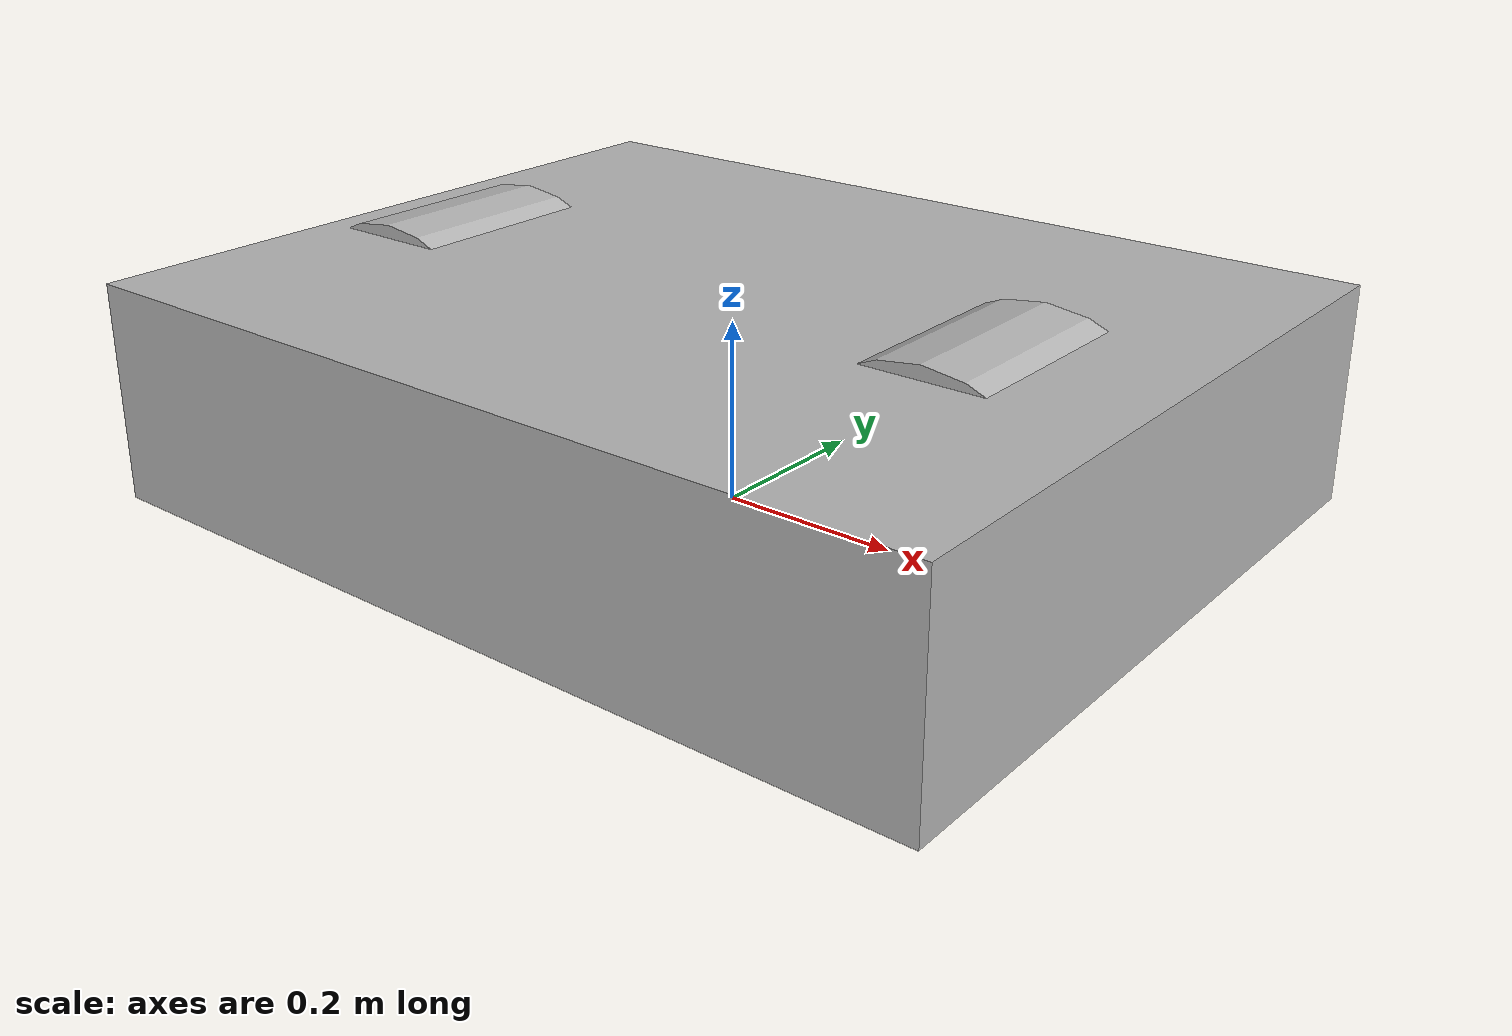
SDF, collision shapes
<?xml version="1.0" ?>
<sdf version="1.5">
  <model name="agv">

    <link name="base">

      <inertial>
        <pose>00.0 0.0 0.12 0 0 0</pose>
        <inertia>
          <ixx>0.001</ixx>
          <ixy>0.000</ixy>
          <ixz>0.000</ixz>
          <iyy>0.001</iyy>
          <iyz>0.000</iyz>
          <izz>0.001</izz>
        </inertia>
        <mass>100.0</mass>
      </inertial>

      <collision name="base_collision">
        <pose>0.0 0 0.120 0 0 0</pose>
        <geometry>
          <box>
            <size>1.0 0.8 0.240</size>
          </box>
        </geometry>
      </collision>

      <visual name="base_visual">
        <pose>0.0 0.0 0.12 0 0 0</pose>
        <geometry>
          <mesh>
            <uri>model://agv_common_meshes/agv.dae</uri>
            <scale>0.001 0.001 0.001</scale>
          </mesh>
        </geometry>
      </visual>
    </link>

    <link name="left_wheel">
      <inertial>
        <pose>-0.4 0.0 0.075 1.57 0 0</pose>
        <inertia>
          <ixx>0.001</ixx>
          <ixy>0.000</ixy>
          <ixz>0.000</ixz>
          <iyy>0.001</iyy>
          <iyz>0.000</iyz>
          <izz>0.001</izz>
        </inertia>
        <mass>15</mass>
      </inertial>

      <collision name="left_wheel_collision">
        <pose>-0.4 0.0 0.075 1.57 0 0</pose>
        <geometry>
          <cylinder>
            <radius>0.18</radius>
            <length>0.22</length>
          </cylinder>
        </geometry>
          <surface>
          <!-- This friction pamareter don't contain reliable data!! -->
            <friction>
              <ode>
                <mu>100000.0</mu>
                <mu2>100000.0</mu2>
                <fdir1>0 0 0</fdir1>
                <slip1>0.0</slip1>
                <slip2>0.0</slip2>
              </ode>
          </friction>
        </surface>
      </collision>

      <visual name="left_wheel_visual">
        <pose>-0.4 0.0 0.075 1.57 0 0</pose>
        <geometry>
          <mesh>
            <uri>model://agv_common_meshes/wheel.dae</uri>
            <scale>0.001 0.001 0.001</scale>
          </mesh>
        </geometry>
      </visual>
    </link>

    <link name="right_wheel">
      <inertial>
        <pose>0.3 0.0 0.075 -1.57 0 0</pose>
        <inertia>
          <ixx>0.001</ixx>
          <ixy>0.000</ixy>
          <ixz>0.000</ixz>
          <iyy>0.001</iyy>
          <iyz>0.000</iyz>
          <izz>0.001</izz>
        </inertia>
        <mass>1.5</mass>
      </inertial>

      <collision name="right_wheel_collision">
        <pose>0.3 0.0 0.075 -1.57 0 0</pose>
        <geometry>
          <cylinder>
            <radius>0.18</radius>
            <length>0.22</length>
          </cylinder>
        </geometry>
          <surface>
          <!-- This friction pamareter don't contain reliable data!! -->
            <friction>
              <ode>
                <mu>100000.0</mu>
                <mu2>100000.0</mu2>
                <fdir1>0 0 0</fdir1>
                <slip1>0.0</slip1>
                <slip2>0.0</slip2>
              </ode>
          </friction>
        </surface>
      </collision>

      <visual name="right_wheel_visual">
        <pose>0.3 0.0 0.075 -1.57 0 0</pose>
        <geometry>
          <mesh>
            <uri>model://agv_common_meshes/wheel.dae</uri>
            <scale>0.001 0.001 0.001</scale>
          </mesh>
        </geometry>
      </visual>
    </link>

    <joint name="left_wheel_joint" type="revolute">
      <parent>base</parent>
      <child>left_wheel</child>
      <pose>-0.4 0.0 0.075 1.57 0 0</pose>
      <axis>
        <xyz>0 0 1</xyz>
      </axis>
    </joint>

    <joint name="right_wheel_joint" type="revolute">
      <parent>base</parent>
      <child>right_wheel</child>
      <pose>0.0 0.35 0.18 0 0 0</pose>
      <axis>
        <xyz>0 0 1</xyz>
      </axis>
    </joint>

  <static>0</static>
  </model>
</sdf>
